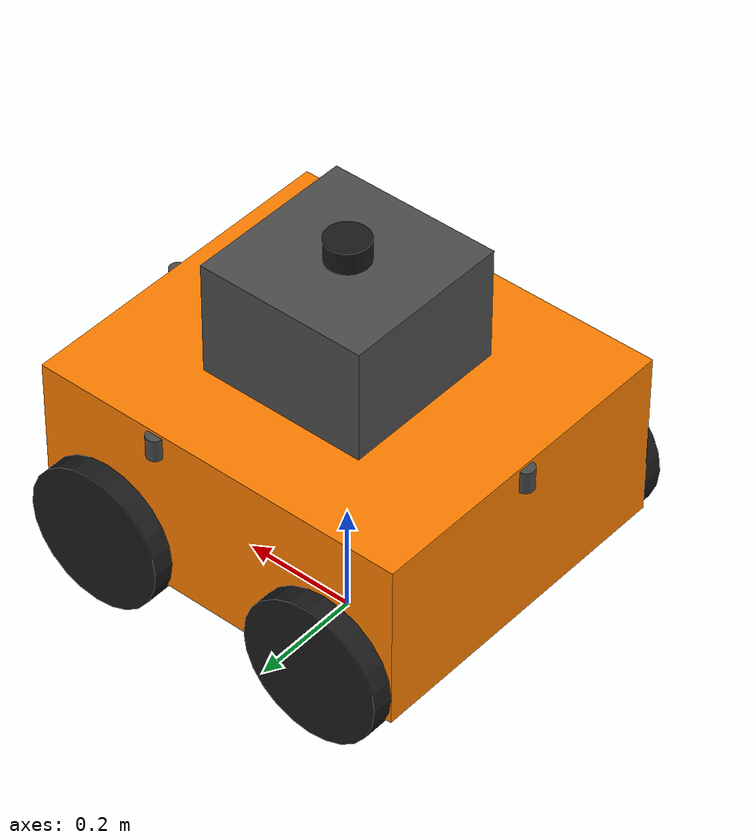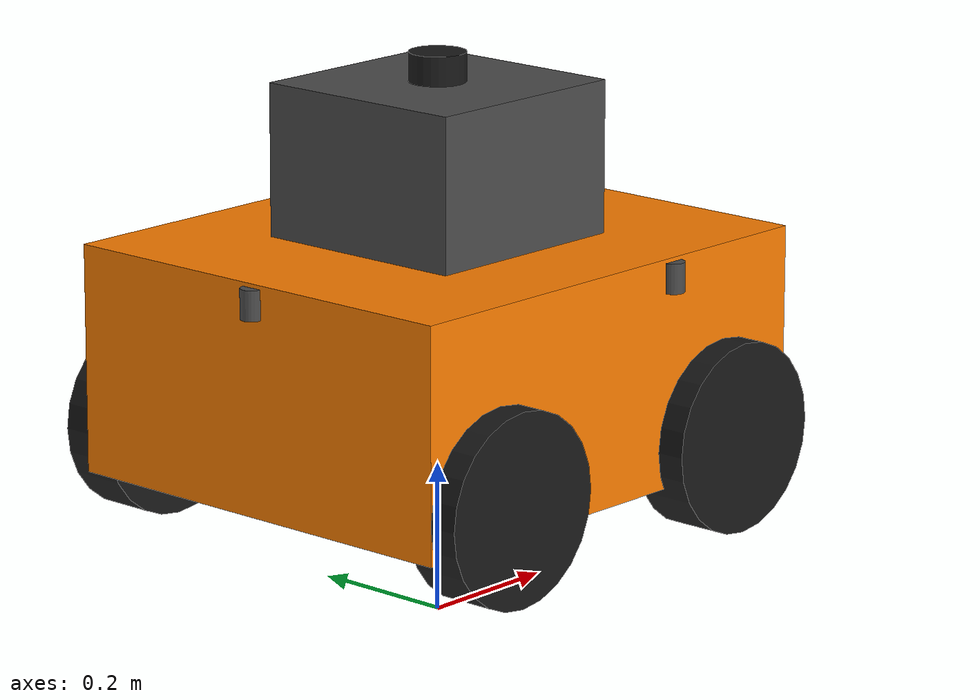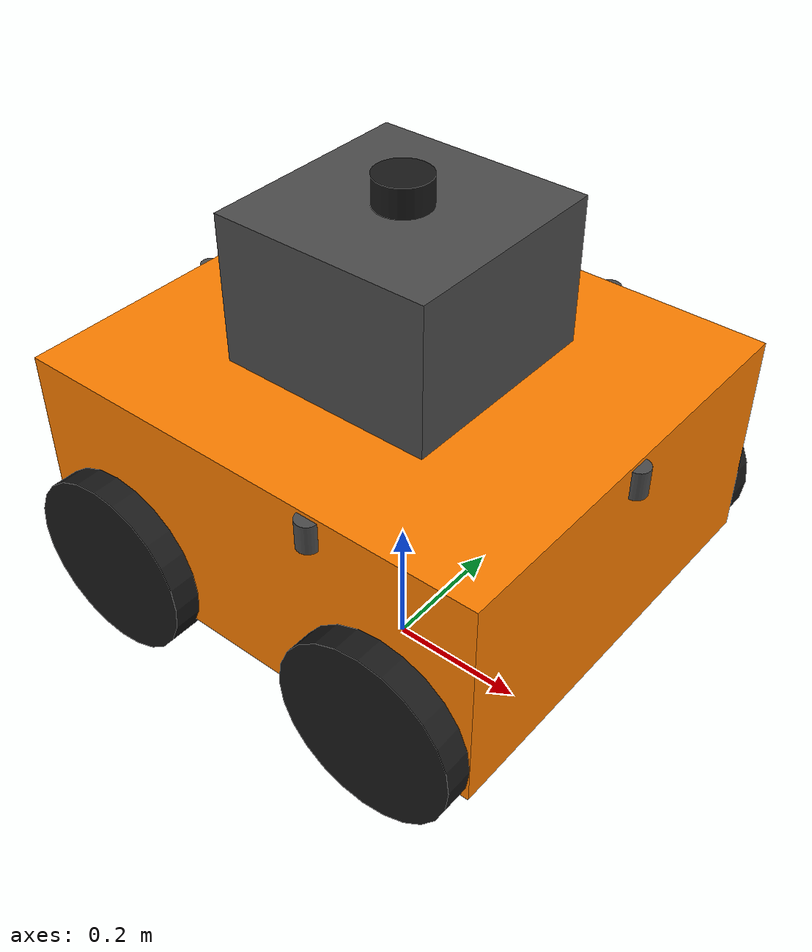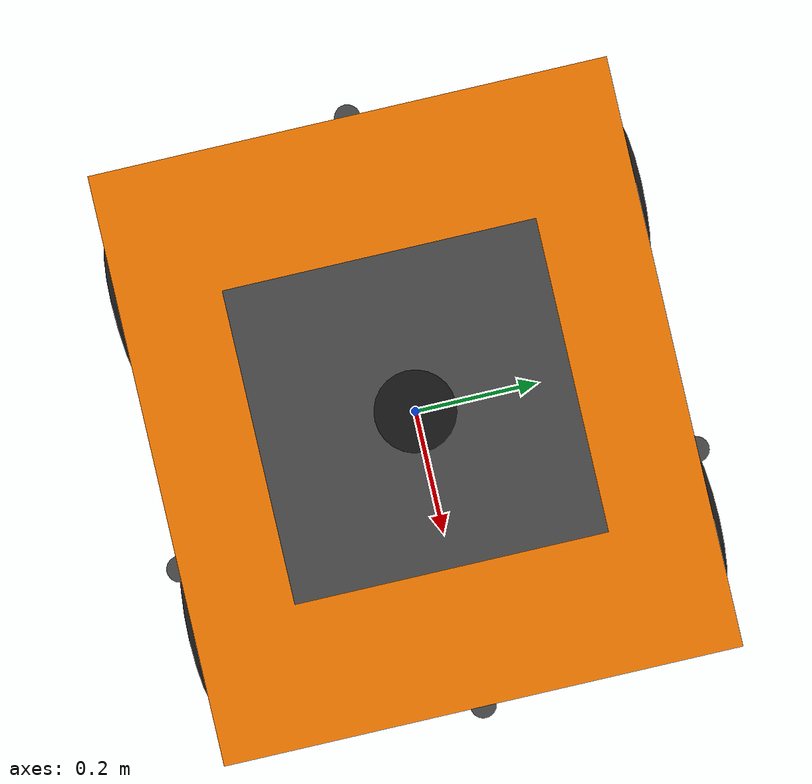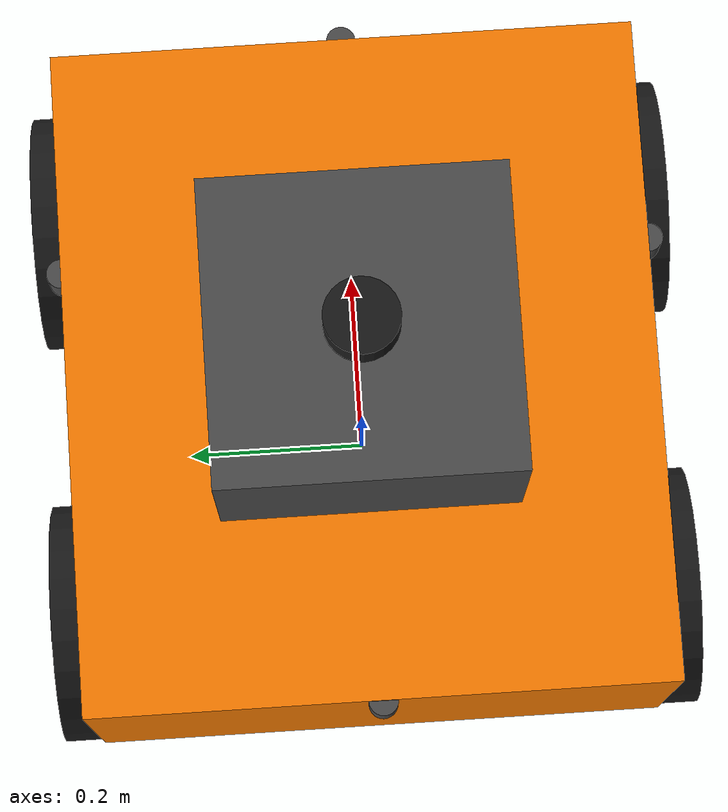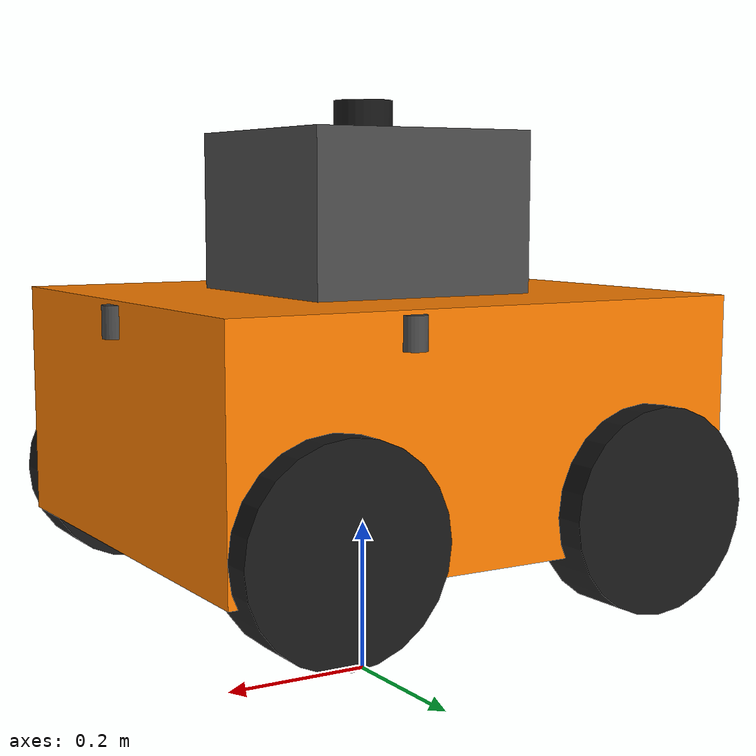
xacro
<?xml version="1.0"?>
<robot name="energia_rover" xmlns:xacro="http://www.ros.org/wiki/xacro">

  <!-- ==================== Properties/Constants ==================== -->

  <!-- Chassis dimensions (converted to meters) -->
  <xacro:property name="chassis_length" value="0.6858"/>    <!-- 27 inches -->
  <xacro:property name="chassis_width" value="0.60325"/>    <!-- 23.75 inches -->
  <xacro:property name="chassis_height" value="0.3048"/>    <!-- 12 inches -->
  <xacro:property name="chassis_mass" value="90.7"/>        <!-- 200 lbs total rover weight -->

  <!-- Electronics box dimensions -->
  <xacro:property name="ebox_length" value="0.3048"/>       <!-- 12 inches -->
  <xacro:property name="ebox_width" value="0.3048"/>        <!-- 12 inches -->
  <xacro:property name="ebox_height" value="0.2032"/>       <!-- 8 inches -->
  <xacro:property name="ebox_mass" value="5.0"/>            <!-- ~11 lbs for electronics -->

  <!-- Wheel dimensions -->
  <xacro:property name="wheel_radius" value="0.127"/>       <!-- 5 inch radius (10 inch diameter) -->
  <xacro:property name="wheel_width" value="0.0762"/>       <!-- 3 inches -->
  <xacro:property name="wheel_mass" value="4.5"/>           <!-- ~10 lbs per wheel -->

  <!-- Wheel positioning -->
  <xacro:property name="wheelbase" value="0.4318"/>         <!-- 17 inches between front and rear wheels -->
  <xacro:property name="track_width" value="0.60325"/>      <!-- 23.75 inches -->
  <xacro:property name="ground_clearance" value="0.0762"/>  <!-- 3 inches -->

  <!-- Calculated positions -->
  <xacro:property name="rear_wheel_x" value="${-chassis_length/2 + wheel_radius}"/>
  <xacro:property name="front_wheel_x" value="${rear_wheel_x + wheelbase}"/>
  <xacro:property name="wheel_y" value="${track_width/2}"/>
  <xacro:property name="wheel_z" value="${-chassis_height/2 + wheel_radius - ground_clearance}"/>

  <!-- Center of mass: 4 inches above bottom edge of chassis -->
  <xacro:property name="com_z_offset" value="${-chassis_height/2 + 0.1016}"/>

  <!-- RPLidar A1 specs -->
  <xacro:property name="lidar_radius" value="0.038"/>       <!-- 76mm diameter / 2 -->
  <xacro:property name="lidar_height" value="0.039"/>       <!-- 39mm height -->
  <xacro:property name="lidar_mass" value="0.170"/>         <!-- 170 grams -->

  <!-- Ultrasonic sensor specs -->
  <xacro:property name="ultrasonic_min_range" value="0.20"/>
  <xacro:property name="ultrasonic_max_range" value="6.0"/>
  <xacro:property name="ultrasonic_fov" value="1.22"/>      <!-- 70 degrees -->
  <xacro:property name="sensor_z_offset" value="0.1270"/>   <!-- 11 inches from ground -->

  <!-- ==================== Wheel Macro ==================== -->

  <xacro:macro name="wheel" params="prefix x_offset y_offset">
    <link name="${prefix}_wheel">
      <visual>
        <origin xyz="0 0 0" rpy="${pi/2} 0 0"/>
        <geometry>
          <cylinder radius="${wheel_radius}" length="${wheel_width}"/>
        </geometry>
        <material name="black">
          <color rgba="0.1 0.1 0.1 1"/>
        </material>
      </visual>

      <collision>
        <origin xyz="0 0 0" rpy="${pi/2} 0 0"/>
        <geometry>
          <cylinder radius="${wheel_radius}" length="${wheel_width}"/>
        </geometry>
      </collision>

      <inertial>
        <origin xyz="0 0 0" rpy="${pi/2} 0 0"/>
        <mass value="${wheel_mass}"/>
        <inertia
          ixx="${wheel_mass * (3 * wheel_radius * wheel_radius + wheel_width * wheel_width) / 12}"
          ixy="0.0" ixz="0.0"
          iyy="${wheel_mass * (3 * wheel_radius * wheel_radius + wheel_width * wheel_width) / 12}"
          iyz="0.0"
          izz="${wheel_mass * wheel_radius * wheel_radius / 2}"/>
      </inertial>
    </link>

    <joint name="${prefix}_wheel_joint" type="continuous">
      <parent link="base_link"/>
      <child link="${prefix}_wheel"/>
      <origin xyz="${x_offset} ${y_offset} ${wheel_z}" rpy="0 0 0"/>
      <axis xyz="0 1 0"/>
      <dynamics damping="5.0" friction="1.0"/>
    </joint>

    <!-- Gazebo Harmonic wheel surface properties -->
    <gazebo reference="${prefix}_wheel">
      <material>
        <ambient>0.1 0.1 0.1 1</ambient>
        <diffuse>0.1 0.1 0.1 1</diffuse>
      </material>
      <surface>
        <friction>
          <ode>
            <mu>1.5</mu>
            <mu2>0.5</mu2>
          </ode>
        </friction>
        <contact>
          <ode>
            <kp>10000000.0</kp>
            <kd>1.0</kd>
            <min_depth>0.001</min_depth>
          </ode>
        </contact>
      </surface>
    </gazebo>
  </xacro:macro>

  <!-- ==================== Ultrasonic Sensor Macro ==================== -->

  <xacro:macro name="ultrasonic" params="name x y yaw">
    <link name="${name}_link">
      <visual>
        <origin xyz="0 0 0" rpy="0 0 0"/>
        <geometry>
          <cylinder radius="0.015" length="0.04"/>
        </geometry>
        <material name="gray">
          <color rgba="0.3 0.3 0.3 1"/>
        </material>
      </visual>

      <collision>
        <origin xyz="0 0 0" rpy="0 0 0"/>
        <geometry>
          <cylinder radius="0.015" length="0.04"/>
        </geometry>
      </collision>

      <inertial>
        <origin xyz="0 0 0" rpy="0 0 0"/>
        <mass value="0.015"/>
        <inertia ixx="0.000001" ixy="0.0" ixz="0.0" iyy="0.000001" iyz="0.0" izz="0.000001"/>
      </inertial>
    </link>

    <joint name="${name}_joint" type="fixed">
      <parent link="base_link"/>
      <child link="${name}_link"/>
      <origin xyz="${x} ${y} ${sensor_z_offset}" rpy="0 0 ${yaw}"/>
    </joint>

    <gazebo reference="${name}_link">
      <sensor name="${name}" type="gpu_lidar">
        <always_on>true</always_on>
        <update_rate>20</update_rate>
        <visualize>false</visualize>
        <topic>ultrasonic/${name}</topic>
        <lidar>
          <scan>
            <horizontal>
              <samples>5</samples>
              <resolution>1</resolution>
              <min_angle>${-ultrasonic_fov/2}</min_angle>
              <max_angle>${ultrasonic_fov/2}</max_angle>
            </horizontal>
            <vertical>
              <samples>1</samples>
              <resolution>1</resolution>
              <min_angle>0</min_angle>
              <max_angle>0</max_angle>
            </vertical>
          </scan>
          <range>
            <min>${ultrasonic_min_range}</min>
            <max>${ultrasonic_max_range}</max>
            <resolution>0.01</resolution>
          </range>
          <noise>
            <type>gaussian</type>
            <mean>0.0</mean>
            <stddev>0.01</stddev>
          </noise>
        </lidar>
        <gz_frame_id>${name}_link</gz_frame_id>
      </sensor>
      <material>
        <ambient>0.3 0.3 0.3 1</ambient>
        <diffuse>0.3 0.3 0.3 1</diffuse>
      </material>
    </gazebo>
  </xacro:macro>

  <!-- ==================== Base Footprint (Ground Projection) ==================== -->

  <link name="base_footprint"/>

  <joint name="base_footprint_joint" type="fixed">
    <parent link="base_footprint"/>
    <child link="base_link"/>
    <!-- base_link is at chassis center height above ground -->
    <origin xyz="0 0 ${ground_clearance + wheel_radius + chassis_height/2}" rpy="0 0 0"/>
  </joint>

  <!-- ==================== Base Link (Chassis) ==================== -->

  <link name="base_link">
    <visual>
      <origin xyz="0 0 0" rpy="0 0 0"/>
      <geometry>
        <box size="${chassis_length} ${chassis_width} ${chassis_height}"/>
      </geometry>
      <material name="orange">
        <color rgba="1.0 0.5 0.0 1"/>
      </material>
    </visual>

    <collision>
      <origin xyz="0 0 0" rpy="0 0 0"/>
      <geometry>
        <box size="${chassis_length} ${chassis_width} ${chassis_height}"/>
      </geometry>
    </collision>

    <inertial>
      <origin xyz="0 0 ${com_z_offset}" rpy="0 0 0"/>
      <mass value="${chassis_mass}"/>
      <inertia
        ixx="${chassis_mass * (chassis_width * chassis_width + chassis_height * chassis_height) / 12}"
        ixy="0.0" ixz="0.0"
        iyy="${chassis_mass * (chassis_length * chassis_length + chassis_height * chassis_height) / 12}"
        iyz="0.0"
        izz="${chassis_mass * (chassis_length * chassis_length + chassis_width * chassis_width) / 12}"/>
    </inertial>
  </link>

  <gazebo reference="base_link">
    <material>
      <ambient>1.0 0.5 0.0 1</ambient>
      <diffuse>1.0 0.5 0.0 1</diffuse>
    </material>
    <surface>
      <friction>
        <ode>
          <mu>0.2</mu>
          <mu2>0.2</mu2>
        </ode>
      </friction>
    </surface>
  </gazebo>

  <!-- ==================== Wheels ==================== -->

  <xacro:wheel prefix="front_left" x_offset="${front_wheel_x}" y_offset="${wheel_y}"/>
  <xacro:wheel prefix="front_right" x_offset="${front_wheel_x}" y_offset="${-wheel_y}"/>
  <xacro:wheel prefix="rear_left" x_offset="${rear_wheel_x}" y_offset="${wheel_y}"/>
  <xacro:wheel prefix="rear_right" x_offset="${rear_wheel_x}" y_offset="${-wheel_y}"/>

  <!-- ==================== Electronics Box ==================== -->

  <link name="electronics_box">
    <visual>
      <origin xyz="0 0 0" rpy="0 0 0"/>
      <geometry>
        <box size="${ebox_length} ${ebox_width} ${ebox_height}"/>
      </geometry>
      <material name="dark_gray">
        <color rgba="0.3 0.3 0.3 1"/>
      </material>
    </visual>

    <collision>
      <origin xyz="0 0 0" rpy="0 0 0"/>
      <geometry>
        <box size="${ebox_length} ${ebox_width} ${ebox_height}"/>
      </geometry>
    </collision>

    <inertial>
      <origin xyz="0 0 0" rpy="0 0 0"/>
      <mass value="${ebox_mass}"/>
      <inertia
        ixx="${ebox_mass * (ebox_width * ebox_width + ebox_height * ebox_height) / 12}"
        ixy="0.0" ixz="0.0"
        iyy="${ebox_mass * (ebox_length * ebox_length + ebox_height * ebox_height) / 12}"
        iyz="0.0"
        izz="${ebox_mass * (ebox_length * ebox_length + ebox_width * ebox_width) / 12}"/>
    </inertial>
  </link>

  <joint name="electronics_box_joint" type="fixed">
    <parent link="base_link"/>
    <child link="electronics_box"/>
    <origin xyz="0 0 ${chassis_height/2 + ebox_height/2}" rpy="0 0 0"/>
  </joint>

  <gazebo reference="electronics_box">
    <material>
      <ambient>0.3 0.3 0.3 1</ambient>
      <diffuse>0.3 0.3 0.3 1</diffuse>
    </material>
  </gazebo>

  <!-- ==================== RPLidar A1 ==================== -->

  <link name="rplidar_link">
    <visual>
      <origin xyz="0 0 0" rpy="0 0 0"/>
      <geometry>
        <cylinder radius="${lidar_radius}" length="${lidar_height}"/>
      </geometry>
      <material name="black">
        <color rgba="0.1 0.1 0.1 1"/>
      </material>
    </visual>

    <collision>
      <origin xyz="0 0 0" rpy="0 0 0"/>
      <geometry>
        <cylinder radius="${lidar_radius}" length="${lidar_height}"/>
      </geometry>
    </collision>

    <inertial>
      <origin xyz="0 0 0" rpy="0 0 0"/>
      <mass value="${lidar_mass}"/>
      <inertia
        ixx="${lidar_mass * (3 * lidar_radius * lidar_radius + lidar_height * lidar_height) / 12}"
        ixy="0.0" ixz="0.0"
        iyy="${lidar_mass * (3 * lidar_radius * lidar_radius + lidar_height * lidar_height) / 12}"
        iyz="0.0"
        izz="${lidar_mass * lidar_radius * lidar_radius / 2}"/>
    </inertial>
  </link>

  <joint name="rplidar_joint" type="fixed">
    <parent link="electronics_box"/>
    <child link="rplidar_link"/>
    <!-- Centered on top of electronics box -->
    <origin xyz="0 0 ${ebox_height/2 + lidar_height/2}" rpy="0 0 0"/>
  </joint>

  <gazebo reference="rplidar_link">
    <sensor name="rplidar_a1" type="gpu_lidar">
      <always_on>true</always_on>
      <update_rate>10</update_rate>
      <visualize>true</visualize>
      <topic>/scan</topic>
      <lidar>
        <scan>
          <horizontal>
            <samples>360</samples>
            <resolution>1</resolution>
            <min_angle>0</min_angle>
            <max_angle>${2*pi}</max_angle>
          </horizontal>
          <vertical>
            <samples>1</samples>
            <resolution>1</resolution>
            <min_angle>0</min_angle>
            <max_angle>0</max_angle>
          </vertical>
        </scan>
        <range>
          <min>0.15</min>
          <max>12.0</max>
          <resolution>0.01</resolution>
        </range>
        <noise>
          <type>gaussian</type>
          <mean>0.0</mean>
          <stddev>0.01</stddev>
        </noise>
      </lidar>
      <gz_frame_id>rplidar_link</gz_frame_id>
    </sensor>
    <material>
      <ambient>0.1 0.1 0.1 1</ambient>
      <diffuse>0.1 0.1 0.1 1</diffuse>
    </material>
  </gazebo>

  <!-- ==================== IMU Sensor ==================== -->

  <gazebo reference="base_link">
    <sensor name="imu_sensor" type="imu">
      <always_on>true</always_on>
      <update_rate>100</update_rate>
      <topic>/imu</topic>
      <imu>
        <angular_velocity>
          <x><noise type="gaussian"><mean>0.0</mean><stddev>0.0002</stddev></noise></x>
          <y><noise type="gaussian"><mean>0.0</mean><stddev>0.0002</stddev></noise></y>
          <z><noise type="gaussian"><mean>0.0</mean><stddev>0.0002</stddev></noise></z>
        </angular_velocity>
        <linear_acceleration>
          <x><noise type="gaussian"><mean>0.0</mean><stddev>0.017</stddev></noise></x>
          <y><noise type="gaussian"><mean>0.0</mean><stddev>0.017</stddev></noise></y>
          <z><noise type="gaussian"><mean>0.0</mean><stddev>0.017</stddev></noise></z>
        </linear_acceleration>
      </imu>
      <gz_frame_id>base_link</gz_frame_id>
    </sensor>
  </gazebo>

  <!-- ==================== Ultrasonic Sensors ==================== -->

  <!-- Front sensor (0 deg) -->
  <xacro:ultrasonic name="ultrasonic_front" x="${chassis_length/2}" y="0" yaw="0"/>

  <!-- Front corners (45 deg) -->
  <xacro:ultrasonic name="ultrasonic_front_left" x="${chassis_length/2 * 0.8}" y="${chassis_width/2 * 0.8}" yaw="${pi/4}"/>
  <xacro:ultrasonic name="ultrasonic_front_right" x="${chassis_length/2 * 0.8}" y="${-chassis_width/2 * 0.8}" yaw="${-pi/4}"/>

  <!-- Side sensors (90 deg) -->
  <xacro:ultrasonic name="ultrasonic_left" x="0.1143" y="${chassis_width/2}" yaw="${pi/2}"/>
  <xacro:ultrasonic name="ultrasonic_right" x="0.1143" y="${-chassis_width/2}" yaw="${-pi/2}"/>

  <!-- Rear sensor (180 deg) -->
  <xacro:ultrasonic name="ultrasonic_rear" x="${-chassis_length/2}" y="0" yaw="${pi}"/>

  <!-- ==================== Gazebo Harmonic Plugins ==================== -->

  <!-- Differential Drive Controller (Skid-Steer) -->
  <gazebo>
    <plugin filename="gz-sim-diff-drive-system" name="gz::sim::systems::DiffDrive">
      <left_joint>front_left_wheel_joint</left_joint>
      <left_joint>rear_left_wheel_joint</left_joint>
      <right_joint>front_right_wheel_joint</right_joint>
      <right_joint>rear_right_wheel_joint</right_joint>

      <wheel_separation>${track_width}</wheel_separation>
      <wheel_radius>${wheel_radius}</wheel_radius>

      <max_linear_acceleration>1.0</max_linear_acceleration>
      <min_linear_acceleration>-1.0</min_linear_acceleration>
      <max_angular_acceleration>2.0</max_angular_acceleration>
      <min_angular_acceleration>-2.0</min_angular_acceleration>

      <topic>/cmd_vel</topic>
      <odom_topic>/odom</odom_topic>

      <frame_id>odom</frame_id>
      <child_frame_id>base_footprint</child_frame_id>

      <odom_publish_frequency>50</odom_publish_frequency>
      <publish_odom>true</publish_odom>
      <!-- TF is NOT bridged from Gazebo. odom_to_tf node converts /odom to TF
           with consistent sim time timestamps to avoid "jump back in time" errors -->
      <publish_odom_tf>false</publish_odom_tf>
    </plugin>
  </gazebo>

</robot>
